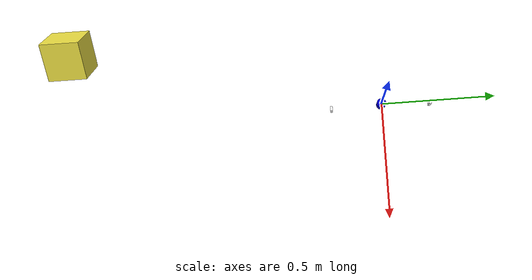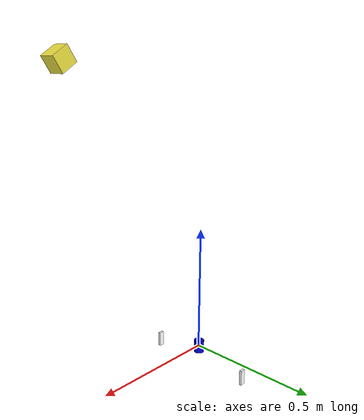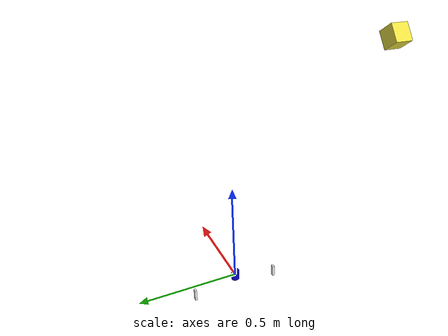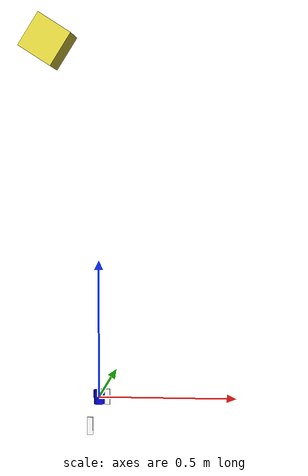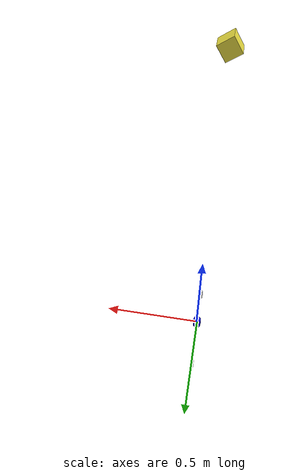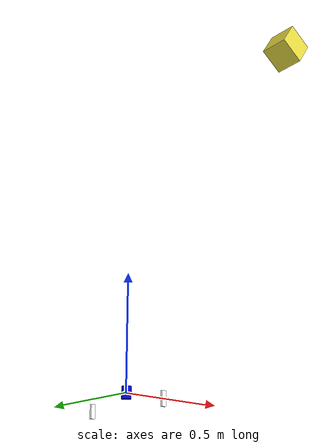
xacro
<?xml version="1.0"?>
    <robot name="materials">

      <material name="blue">
        <color rgba="0 0 0.8 1"/>
      </material>

      <material name="white">
        <color rgba="1 1 1 1"/>
     </material>

     <link name="base_link">
       <visual>
         <geometry>
           <cylinder length="0.05" radius="0.02"/>
         </geometry>
         <material name="blue"/>
       </visual>
     </link>

     <link name="right_leg">
       <visual>
         <geometry>
           <box size="0.06 0.01 0.02"/>
         </geometry>
         <origin rpy="0 1.57075 0" xyz="0 0 -0.3"/>
         <material name="white"/>
       </visual>
     </link>

     <joint name="base_to_right_leg" type="fixed">
       <parent link="base_link"/>
       <child link="right_leg"/>
       <origin xyz="0 -0.22 0.25"/>
     </joint>

     <link name="left_leg">
       <visual>
         <geometry>
           <box size="0.06 0.01 0.02"/>
         </geometry>
         <origin rpy="0 1.57075 0" xyz="0 0 -0.3"/>
         <material name="white"/>
       </visual>
     </link>

     <joint name="base_to_left_leg" type="fixed">
       <parent link="base_link"/>
      <child link="left_leg"/>
       <origin xyz="0 0.22 0.25"/>
    </joint>

  <link name="lidar_link">
    <collision>
      <origin xyz="0 0 0" rpy="0 0 0" />
      <geometry>
        <box size="0.2 0.2 0.2" />
      </geometry>
    </collision>
    <visual>
      <origin xyz="0 0 0.4" rpy="0 0.57075 0" />
      <geometry>
        <box size="0.1 0.1 0.1" />
      </geometry>
    </visual>
    <inertial>
      <mass value="1e-5" />
      <origin xyz="0 0 0" rpy="0 0 0" />
      <inertia ixx="1e-6" ixy="0" ixz="0" iyy="1e-6" iyz="0" izz="1e-6" />
    </inertial>
  </link>
  <joint name="lidar_joint" type="fixed">
    <origin xyz="0 -0.90 0.75"/>
    <parent link="base_link" />
    <child link="lidar_link" />
  </joint>

<gazebo reference="lidar_link">

<sensor type="ray" name="lidar_link">
          <pose>0 0 0 0 0 0</pose>
          <visualize>false</visualize>
          <update_rate>10</update_rate>
          <ray>
            <scan>
              <horizontal>
                <samples>1875</samples>
                <resolution>1</resolution>
                <min_angle>-3</min_angle>
                <max_angle>3</max_angle>
              </horizontal>
              <vertical>
                <samples>16</samples>
                <resolution>1</resolution>
                <min_angle>-0.25</min_angle>
                <max_angle>0.25</max_angle>
              </vertical>
            </scan>
            <range>
              <min>0.3</min>
              <max>131.0</max>
              <resolution>0.001</resolution>
            </range>
            <noise>
              <type>gaussian</type>
              <mean>0.0</mean>
              <stddev>0.0</stddev>
            </noise>
          </ray>
          <plugin name="gazebo_ros_laser_controller" filename="libgazebo_ros_velodyne_laser.so">
            <topicName>/velodyne</topicName>
            <frameName>lidar_link</frameName>
            <min_range>0.9</min_range>
            <max_range>130.0</max_range>
            <gaussianNoise>0.008</gaussianNoise>
          </plugin>
        </sensor>

      </gazebo>

   </robot>
